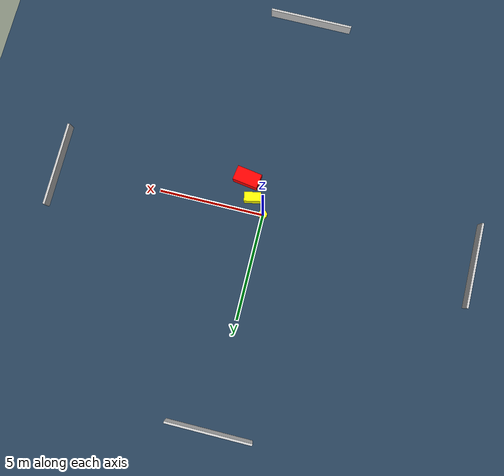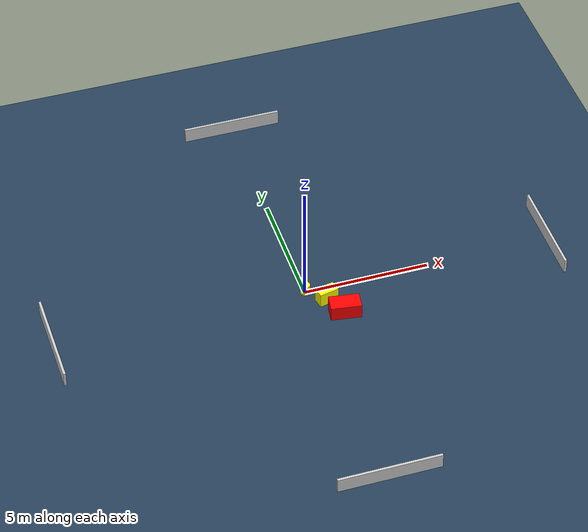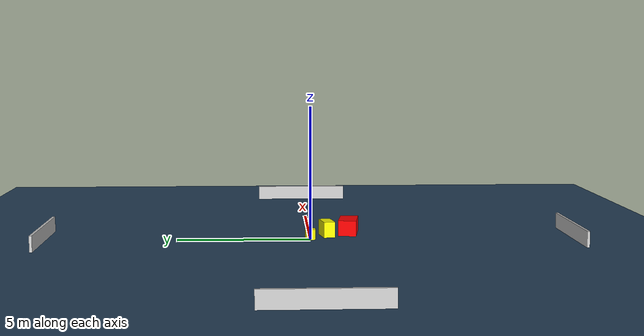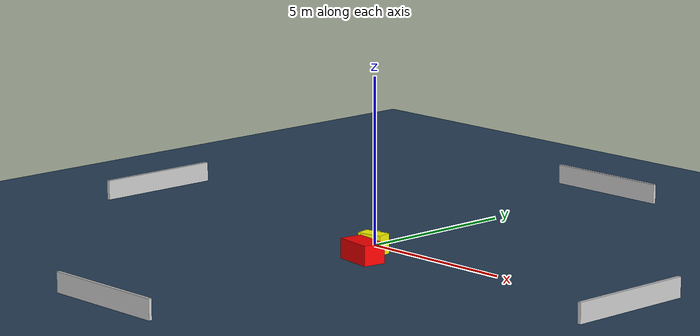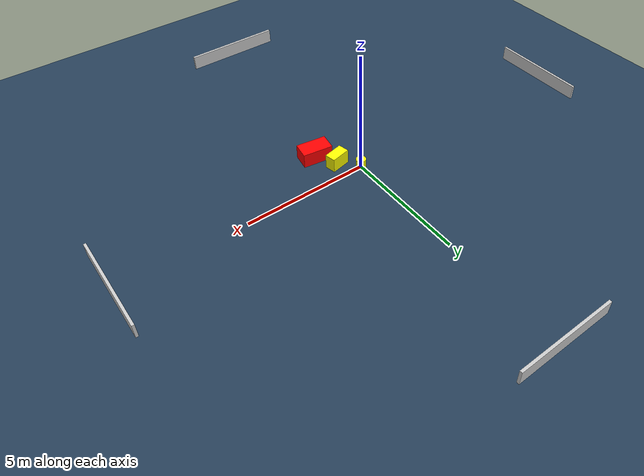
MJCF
<?xml version="1.0" ?>
<mujoco model="generated_environment">
  <option timestep="0.01" integrator="RK4" cone="elliptic"/>
  <default>
    <geom density="1"/>
  </default>
  <asset>
    <texture builtin="gradient" height="3072" name="skybox" rgb1="0.3 0.5 0.7" rgb2="0 0 0" type="skybox" width="512"/>
    <texture builtin="checker" height="300" name="groundplane" rgb1="0.2 0.3 0.4" rgb2="0.1 0.2 0.3" type="2d" width="300"/>
    <material name="groundplane" reflectance="0.2" texrepeat="5 5" texture="groundplane"/>
  </asset>
  <worldbody>
    <light dir="0 0 -1" directional="true" pos="0 0 1.5"/>
    <geom condim="3" friction="0.5 0.005 0.001" material="groundplane" name="floor" pos="0 0 0" size="0 0 0.05" type="plane"/>
    <body name="walls">
      <geom name="wall_1" condim="4" pos="-10.0 0.0 0.3" rgba="0.800000011920929 0.800000011920929 0.800000011920929 1.0" size="0.05 2.0 0.3" type="box"/>
      <geom name="wall_2" condim="4" pos="10.0 0.0 0.3" rgba="0.800000011920929 0.800000011920929 0.800000011920929 1.0" size="0.05 2.0 0.3" type="box"/>
      <geom name="wall_3" condim="4" pos="0.0 -10.0 0.3" rgba="0.800000011920929 0.800000011920929 0.800000011920929 1.0" size="2.0 0.05 0.3" type="box"/>
      <geom name="wall_4" condim="4" pos="0.0 10.0 0.3" rgba="0.800000011920929 0.800000011920929 0.800000011920929 1.0" size="2.0 0.05 0.3" type="box"/>
    </body>
    <body name="robot">
      <joint name="joint_x" type="slide" pos="0 0 0" axis="1 0 0"/>
      <joint name="joint_y" type="slide" pos="0 0 0" axis="0 1 0"/>
      <geom name="robot" type="cylinder" pos="0.0 0.0 0.2" size="0.2 0.2 0.0" mass="5.0" friction="1.0 0.005 0.0001" condim="4" rgba="1.0 1.0 0.0 1.0"/>
    </body>
    <body name="obstacle_1_movable">
      <geom name="obstacle_1_movable" condim="4" pos="0.6616817214372681 -0.6625711611077755 0.3" euler="0 0 281.59847503585445" friction="0.0 0.005 0.001" rgba="1.0 1.0 0.0 1.0" size="0.2191847036833421 0.39159457863279346 0.3" type="box" mass="0.1"/>
      <joint type="free"/>
    </body>
    <body name="obstacle_2_static">
      <geom name="obstacle_2_static" condim="4" pos="1.1192045994306068 -1.5197824104396027 0.3" euler="0 0 261.4402767949055" friction="0.0 0.005 0.001" rgba="1.0 0.0 0.0 1.0" size="0.3446782979958084 0.6018804547592869 0.3" type="box"/>
    </body>
  </worldbody>
  <actuator>
    <motor name="actuator_x" joint="joint_x" gear="1" ctrlrange="-1 1"/>
    <motor name="actuator_y" joint="joint_y" gear="1" ctrlrange="-1 1"/>
  </actuator>
</mujoco>
